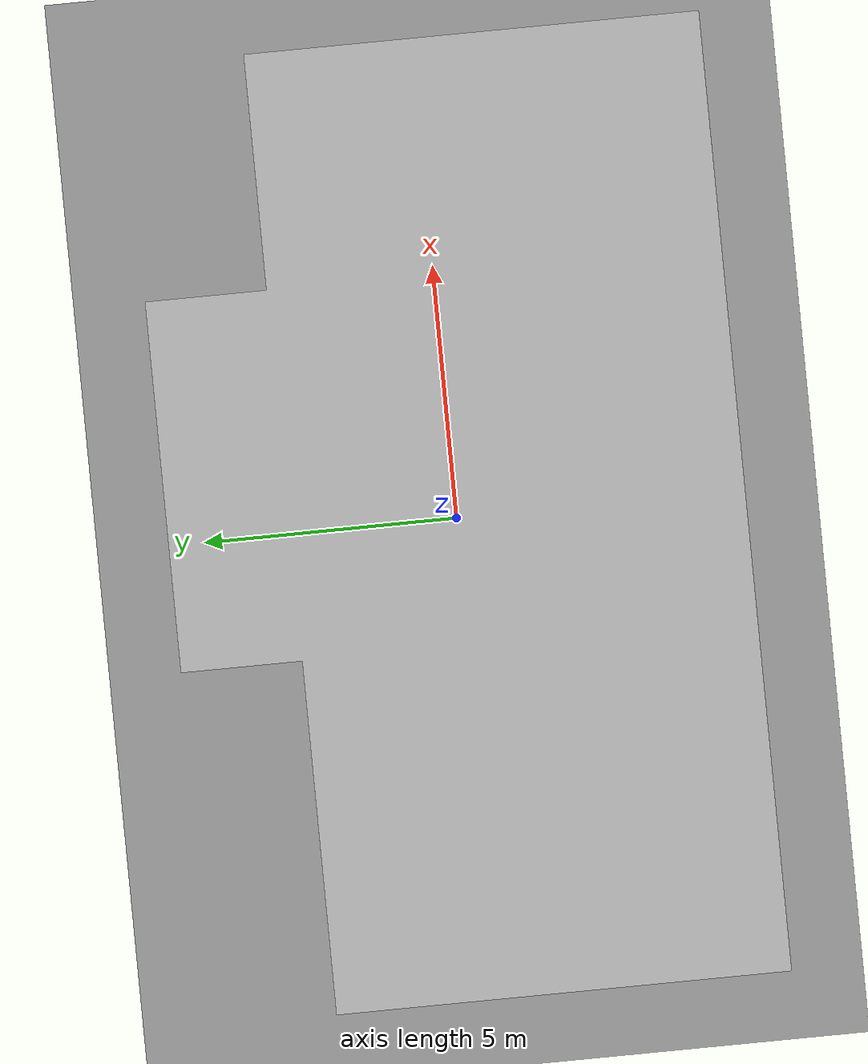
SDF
<?xml version='1.0'?>
<sdf version='1.6'>
  <model name='FloorLarge'>
    <link name='aws_robomaker_residential_FloorB_01::link'>
      <pose frame=''>0 0 0 0 -0 0</pose>
      <inertial>
        <mass>100</mass>
      </inertial>
      <self_collide>0</self_collide>
      <kinematic>0</kinematic>
      <visual name='visual'>
        <geometry>
          <mesh>
            <uri>file://models/aws_robomaker_residential_FloorB_01/meshes/aws_FloorB_01_visual.DAE</uri>
          </mesh>
        </geometry>
        <meta>
          <layer>1</layer>
        </meta>
        <material>
          <shader type='pixel'/>
        </material>
        <pose frame=''>0 0 0 0 -0 0</pose>
        <cast_shadows>1</cast_shadows>
        <transparency>0</transparency>
      </visual>
      <collision name='collision'>
        <laser_retro>0</laser_retro>
        <max_contacts>10</max_contacts>
        <pose frame=''>0 0 0 0 -0 0</pose>
        <geometry>
          <mesh>
            <uri>/gundrys/b9/github/aws-robomaker-sample-application-helloworld/simulation_ws/src/aws-robomaker-small-house-world-dynamic/models/aws_robomaker_residential_FloorB_01/meshes/aws_FloorB_01_collision.DAE</uri>
            <scale>1 1 0.9</scale>
          </mesh>
        </geometry>
        <surface>
          <friction>
            <ode>
              <mu>0.6</mu>
              <mu2>0.6</mu2>
              <fdir1>0 0 0</fdir1>
              <slip1>0</slip1>
              <slip2>0</slip2>
            </ode>
            <torsional>
              <coefficient>1</coefficient>
              <patch_radius>0</patch_radius>
              <surface_radius>0</surface_radius>
              <use_patch_radius>1</use_patch_radius>
              <ode>
                <slip>0</slip>
              </ode>
            </torsional>
          </friction>
          <bounce>
            <restitution_coefficient>0</restitution_coefficient>
            <threshold>1e+06</threshold>
          </bounce>
          <contact>
            <collide_without_contact>0</collide_without_contact>
            <collide_without_contact_bitmask>1</collide_without_contact_bitmask>
            <collide_bitmask>1</collide_bitmask>
            <ode>
              <soft_cfm>0</soft_cfm>
              <soft_erp>0.2</soft_erp>
              <kp>1e+13</kp>
              <kd>1</kd>
              <max_vel>0.01</max_vel>
              <min_depth>0</min_depth>
            </ode>
            <bullet>
              <split_impulse>1</split_impulse>
              <split_impulse_penetration_threshold>-0.01</split_impulse_penetration_threshold>
              <soft_cfm>0</soft_cfm>
              <soft_erp>0.2</soft_erp>
              <kp>1e+13</kp>
              <kd>1</kd>
            </bullet>
          </contact>
        </surface>
      </collision>
    </link>
    <link name='link_1'>
      <pose frame=''>-0.401496 -0.98825 -2.6747 0 -0 0</pose>
      <inertial>
        <mass>2521.26</mass>
        <inertia>
          <ixx>667664</ixx>
          <ixy>0</ixy>
          <ixz>0</ixz>
          <iyy>420635</iyy>
          <iyz>0</iyz>
          <izz>1.08788e+06</izz>
        </inertia>
        <pose frame=''>0 0 0 0 -0 0</pose>
      </inertial>
      <visual name='visual'>
        <pose frame=''>0 0 0 0 -0 0</pose>
        <geometry>
          <box>
            <size>44.7328 56.3628 1</size>
          </box>
        </geometry>
        <material>
          <lighting>1</lighting>
          <script>
            <uri>file://media/materials/scripts/gazebo.material</uri>
            <name>Gazebo/Grey</name>
          </script>
          <shader type='pixel'/>
          <ambient>0.3 0.3 0.3 1</ambient>
          <diffuse>0.7 0.7 0.7 1</diffuse>
          <specular>0.01 0.01 0.01 1</specular>
          <emissive>0 0 0 1</emissive>
        </material>
        <transparency>0</transparency>
        <cast_shadows>1</cast_shadows>
      </visual>
      <collision name='collision'>
        <laser_retro>0</laser_retro>
        <max_contacts>10</max_contacts>
        <pose frame=''>0 0 0 0 -0 0</pose>
        <geometry>
          <box>
            <size>44.7328 56.3628 1</size>
          </box>
        </geometry>
        <surface>
          <friction>
            <ode>
              <mu>1</mu>
              <mu2>1</mu2>
              <fdir1>0 0 0</fdir1>
              <slip1>0</slip1>
              <slip2>0</slip2>
            </ode>
            <torsional>
              <coefficient>1</coefficient>
              <patch_radius>0</patch_radius>
              <surface_radius>0</surface_radius>
              <use_patch_radius>1</use_patch_radius>
              <ode>
                <slip>0</slip>
              </ode>
            </torsional>
          </friction>
          <bounce>
            <restitution_coefficient>0</restitution_coefficient>
            <threshold>1e+06</threshold>
          </bounce>
          <contact>
            <collide_without_contact>0</collide_without_contact>
            <collide_without_contact_bitmask>1</collide_without_contact_bitmask>
            <collide_bitmask>1</collide_bitmask>
            <ode>
              <soft_cfm>0</soft_cfm>
              <soft_erp>0.2</soft_erp>
              <kp>1e+13</kp>
              <kd>1</kd>
              <max_vel>0.01</max_vel>
              <min_depth>0</min_depth>
            </ode>
            <bullet>
              <split_impulse>1</split_impulse>
              <split_impulse_penetration_threshold>-0.01</split_impulse_penetration_threshold>
              <soft_cfm>0</soft_cfm>
              <soft_erp>0.2</soft_erp>
              <kp>1e+13</kp>
              <kd>1</kd>
            </bullet>
          </contact>
        </surface>
      </collision>
    </link>
    <static>1</static>
    <allow_auto_disable>1</allow_auto_disable>
  </model>
</sdf>
